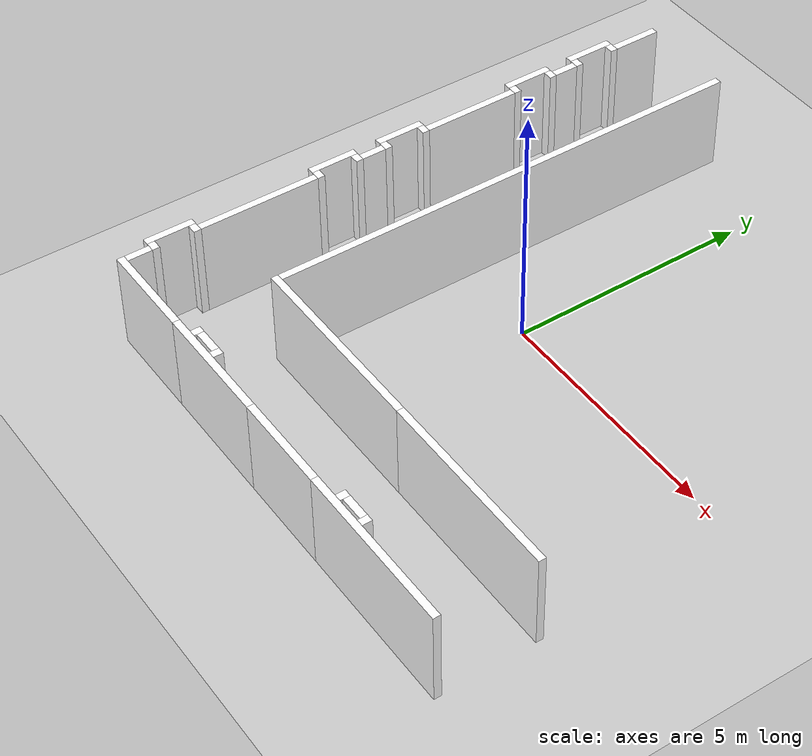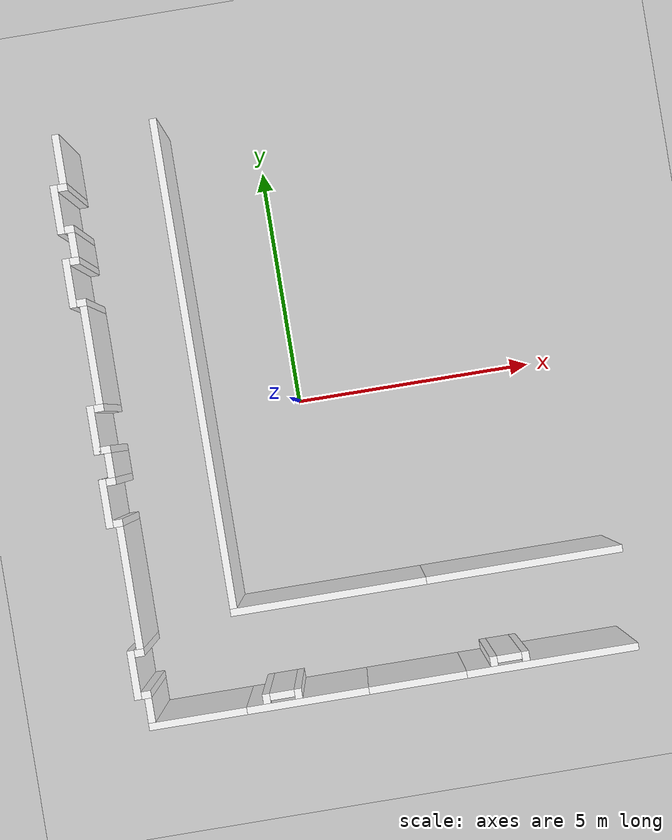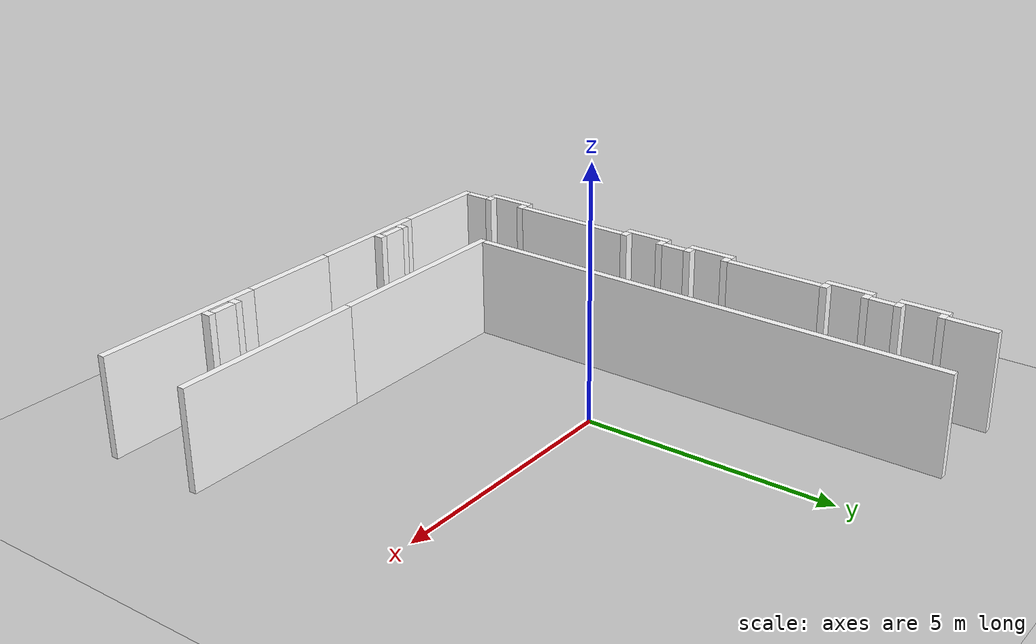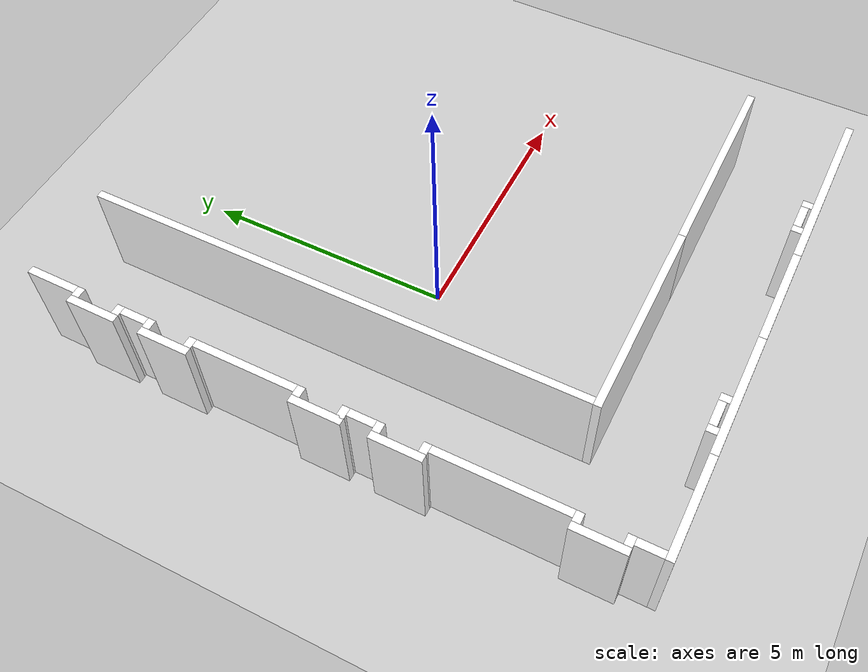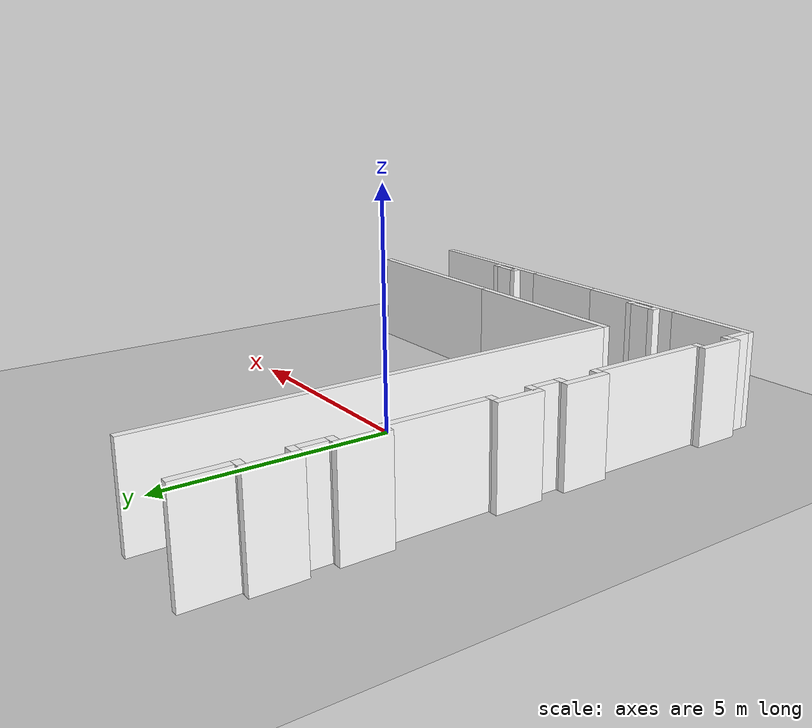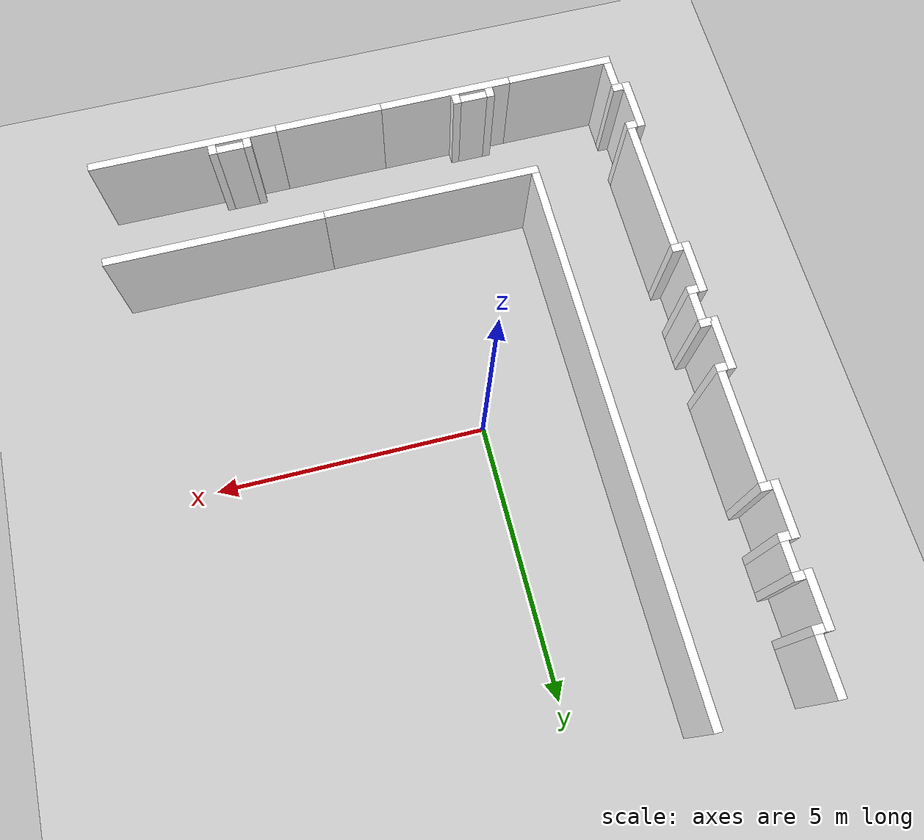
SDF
<sdf version="1.6">
 <world name="default">
  <light name="sun" type="directional">
   <pose>0 0 10 0 -0 0</pose>
   <diffuse>0.8 0.8 0.8 1</diffuse>
   <specular>0.2 0.2 0.2 1</specular>
   <attenuation>
    <range>1000</range>
    <constant>0.9</constant>
    <linear>0.01</linear>
    <quadratic>0.001</quadratic>
   </attenuation>
   <direction>-0.5 0.1 -0.9</direction>
  </light>
  <model name="ground_plane">
   <static>1</static>
   <link name="link">
    <collision name="collision">
     <geometry><plane><normal>0 0 1</normal><size>100 100</size></plane></geometry>
     <surface><friction><ode><mu>100</mu><mu2>50</mu2></ode></friction></surface>
    </collision>
    <visual name="visual">
     <cast_shadows>0</cast_shadows>
     <geometry><plane><normal>0 0 1</normal><size>12 12</size></plane></geometry>
     <material>
      <script>
       <uri>model://turtlebot_model_13/materials/scripts</uri>
       <uri>model://turtlebot_model_13/materials/textures</uri>
       <name>groundTexture/Image</name>
      </script>
     </material>
    </visual>
   </link>
  </model>
  <gravity>0 0 -9.8</gravity>
  <magnetic_field>6e-06 2.3e-05 -4.2e-05</magnetic_field>
  <atmosphere type="adiabatic"/>
  <physics name="default_physics" default="0" type="ode">
   <max_step_size>0.001</max_step_size>
   <real_time_factor>1</real_time_factor>
   <real_time_update_rate>1000</real_time_update_rate>
  </physics>
  <scene><ambient>0.4 0.4 0.4 1</ambient><background>0.7 0.7 0.7 1</background><shadows>1</shadows></scene>
  <spherical_coordinates>
   <surface_model>EARTH_WGS84</surface_model>
   <latitude_deg>0</latitude_deg>
   <longitude_deg>0</longitude_deg>
   <elevation>0</elevation>
   <heading_deg>0</heading_deg>
  </spherical_coordinates>
  <model name="turtlebot_model_13">
   <pose>0.890284 -0.005842 0 0 -0 0</pose>
   <link name="Wall_0">
    <collision name="Wall_0_Collision">
     <geometry><box><size>4 0.15 2</size></box></geometry>
     <pose>0 0 1 0 -0 0</pose>
    </collision>
    <visual name="Wall_0_Visual">
     <pose>0 0 1 0 -0 0</pose>
     <geometry><box><size>4 0.15 2</size></box></geometry>
     <material>
      <script>
       <uri>model://turtlebot_model_13/materials/scripts</uri>
       <uri>model://turtlebot_model_13/materials/textures</uri>
       <name>wallTexture/Image</name>
      </script>
      <ambient>1 1 1 1</ambient>
     </material>
     <meta><layer>0</layer></meta>
    </visual>
    <pose>3.095 -4 0 0 -0 0</pose>
   </link>
   <link name="Wall_15">
    <collision name="Wall_15_Collision">
     <geometry><box><size>2 0.15 2</size></box></geometry>
     <pose>0 0 1 0 -0 0</pose>
    </collision>
    <visual name="Wall_15_Visual">
     <pose>0 0 1 0 -0 0</pose>
     <geometry><box><size>2 0.15 2</size></box></geometry>
     <material>
      <script>
       <uri>model://turtlebot_model_13/materials/scripts</uri>
       <uri>model://turtlebot_model_13/materials/textures</uri>
       <name>doorTexture2/Image</name>
      </script>
      <ambient>1 1 1 1</ambient>
     </material>
     <meta><layer>0</layer></meta>
    </visual>
    <pose>-3.895 -6 0 0 -0 0</pose>
   </link>
   <link name="Wall_17">
    <collision name="Wall_17_Collision">
     <geometry><box><size>2.49 0.15 2</size></box></geometry>
     <pose>0 0 1 0 -0 0</pose>
    </collision>
    <visual name="Wall_17_Visual">
     <pose>0 0 1 0 -0 0</pose>
     <geometry><box><size>2.49 0.15 2</size></box></geometry>
     <material>
      <script>
       <uri>model://turtlebot_model_13/materials/scripts</uri>
       <uri>model://turtlebot_model_13/materials/textures</uri>
       <name>whiteTexture/Image</name>
      </script>
      <ambient>1 1 1 1</ambient>
     </material>
     <meta><layer>0</layer></meta>
    </visual>
    <pose>-1.65 -6 0 0 -0 0</pose>
   </link>
   <link name="Wall_2">
    <collision name="Wall_2_Collision">
     <geometry><box><size>4 0.15 2</size></box></geometry>
     <pose>0 0 1 0 -0 0</pose>
    </collision>
    <visual name="Wall_2_Visual">
     <pose>0 0 1 0 -0 0</pose>
     <geometry><box><size>4 0.15 2</size></box></geometry>
     <material>
      <script>
       <uri>model://turtlebot_model_13/materials/scripts</uri>
       <uri>model://turtlebot_model_13/materials/textures</uri>
       <name>wallTexture/Image</name>
      </script>
      <ambient>1 1 1 1</ambient>
     </material>
     <meta><layer>0</layer></meta>
    </visual>
    <pose>-0.905 -4 0 0 -0 3.14159</pose>
   </link>
   <link name="Wall_20">
    <collision name="Wall_20_Collision">
     <geometry><box><size>0.5 0.15 2</size></box></geometry>
     <pose>0 0 1 0 -0 0</pose>
    </collision>
    <visual name="Wall_20_Visual">
     <pose>0 0 1 0 -0 0</pose>
     <geometry><box><size>0.5 0.15 2</size></box></geometry>
     <material>
      <script>
       <uri>model://turtlebot_model_13/materials/scripts</uri>
       <uri>model://turtlebot_model_13/materials/textures</uri>
       <name>whiteTexture/Image</name>
      </script>
      <ambient>1 1 1 1</ambient>
     </material>
     <meta><layer>0</layer></meta>
    </visual>
    <pose>-4.82 -5.675 0 0 -0 1.5708</pose>
   </link>
   <link name="Wall_24">
    <collision name="Wall_24_Collision">
     <geometry><box><size>2.496 0.15 2</size></box></geometry>
     <pose>0 0 1 0 -0 0</pose>
    </collision>
    <visual name="Wall_24_Visual">
     <pose>0 0 1 0 -0 0</pose>
     <geometry><box><size>2.496 0.15 2</size></box></geometry>
     <material>
      <script>
       <uri>model://turtlebot_model_13/materials/scripts</uri>
       <uri>model://turtlebot_model_13/materials/textures</uri>
       <name>whiteTexture/Image</name>
      </script>
      <ambient>1 1 1 1</ambient>
     </material>
     <meta><layer>0</layer></meta>
    </visual>
    <pose>-4.82 -3.173 0 0 -0 1.5708</pose>
   </link>
   <link name="Wall_26">
    <collision name="Wall_26_Collision">
     <geometry><box><size>1 0.15 2</size></box></geometry>
     <pose>0 0 1 0 -0 0</pose>
    </collision>
    <visual name="Wall_26_Visual">
     <pose>0 0 1 0 -0 0</pose>
     <geometry><box><size>1 0.15 2</size></box></geometry>
     <material>
      <script>
       <uri>model://turtlebot_model_13/materials/scripts</uri>
       <uri>model://turtlebot_model_13/materials/textures</uri>
       <name>doorTexture/Image</name>
      </script>
      <ambient>1 1 1 1</ambient>
     </material>
     <meta><layer>0</layer></meta>
    </visual>
    <pose>-5.02 -1.425 0 0 -0 1.5708</pose>
   </link>
   <link name="Wall_28">
    <collision name="Wall_28_Collision">
     <geometry><box><size>0.5 0.15 2</size></box></geometry>
     <pose>0 0 1 0 -0 0</pose>
    </collision>
    <visual name="Wall_28_Visual">
     <pose>0 0 1 0 -0 0</pose>
     <geometry><box><size>0.5 0.15 2</size></box></geometry>
     <material>
      <script>
       <uri>model://turtlebot_model_13/materials/scripts</uri>
       <uri>model://turtlebot_model_13/materials/textures</uri>
       <name>whiteTexture/Image</name>
      </script>
      <ambient>1 1 1 1</ambient>
     </material>
     <meta><layer>0</layer></meta>
    </visual>
    <pose>-4.82 -0.675001 0 0 -0 1.5708</pose>
   </link>
   <link name="Wall_30">
    <collision name="Wall_30_Collision">
     <geometry><box><size>1 0.15 2</size></box></geometry>
     <pose>0 0 1 0 -0 0</pose>
    </collision>
    <visual name="Wall_30_Visual">
     <pose>0 0 1 0 -0 0</pose>
     <geometry><box><size>1 0.15 2</size></box></geometry>
     <material>
      <script>
       <uri>model://turtlebot_model_13/materials/scripts</uri>
       <uri>model://turtlebot_model_13/materials/textures</uri>
       <name>doorTexture/Image</name>
      </script>
      <ambient>1 1 1 1</ambient>
     </material>
     <meta><layer>0</layer></meta>
    </visual>
    <pose>-5.02 0.074999 0 0 -0 1.5708</pose>
   </link>
   <link name="Wall_32">
    <collision name="Wall_32_Collision">
     <geometry><box><size>2 0.15 2</size></box></geometry>
     <pose>0 0 1 0 -0 0</pose>
    </collision>
    <visual name="Wall_32_Visual">
     <pose>0 0 1 0 -0 0</pose>
     <geometry><box><size>2 0.15 2</size></box></geometry>
     <material>
      <script>
       <uri>model://turtlebot_model_13/materials/scripts</uri>
       <uri>model://turtlebot_model_13/materials/textures</uri>
       <name>whiteTexture/Image</name>
      </script>
      <ambient>1 1 1 1</ambient>
     </material>
     <meta><layer>0</layer></meta>
    </visual>
    <pose>-4.82 1.575 0 0 -0 1.5708</pose>
   </link>
   <link name="Wall_37">
    <collision name="Wall_37_Collision">
     <geometry><box><size>1 0.15 2</size></box></geometry>
     <pose>0 0 1 0 -0 0</pose>
    </collision>
    <visual name="Wall_37_Visual">
     <pose>0 0 1 0 -0 0</pose>
     <geometry><box><size>1 0.15 2</size></box></geometry>
     <material>
      <script>
       <uri>model://turtlebot_model_13/materials/scripts</uri>
       <uri>model://turtlebot_model_13/materials/textures</uri>
       <name>doorTexture/Image</name>
      </script>
      <ambient>1 1 1 1</ambient>
     </material>
     <meta><layer>0</layer></meta>
    </visual>
    <pose>-5.02 3.075 0 0 -0 1.5708</pose>
   </link>
   <link name="Wall_4">
    <collision name="Wall_4_Collision">
     <geometry><box><size>10 0.15 2</size></box></geometry>
     <pose>0 0 1 0 -0 0</pose>
    </collision>
    <visual name="Wall_4_Visual">
     <pose>0 0 1 0 -0 0</pose>
     <geometry><box><size>10 0.15 2</size></box></geometry>
     <material>
      <script>
       <uri>model://turtlebot_model_13/materials/scripts</uri>
       <uri>model://turtlebot_model_13/materials/textures</uri>
       <name>whiteTexture/Image</name>
      </script>
      <ambient>1 1 1 1</ambient>
     </material>
     <meta><layer>0</layer></meta>
    </visual>
    <pose>-2.83 1.075 0 0 -0 1.5708</pose>
   </link>
   <link name="Wall_40">
    <collision name="Wall_40_Collision">
     <geometry><box><size>0.5 0.15 2</size></box></geometry>
     <pose>0 0 1 0 -0 0</pose>
    </collision>
    <visual name="Wall_40_Visual">
     <pose>0 0 1 0 -0 0</pose>
     <geometry><box><size>0.5 0.15 2</size></box></geometry>
     <material>
      <script>
       <uri>model://turtlebot_model_13/materials/scripts</uri>
       <uri>model://turtlebot_model_13/materials/textures</uri>
       <name>whiteTexture/Image</name>
      </script>
      <ambient>1 1 1 1</ambient>
     </material>
     <meta><layer>0</layer></meta>
    </visual>
    <pose>-4.82 3.825 0 0 -0 1.5708</pose>
   </link>
   <link name="Wall_42">
    <collision name="Wall_42_Collision">
     <geometry><box><size>1 0.15 2</size></box></geometry>
     <pose>0 0 1 0 -0 0</pose>
    </collision>
    <visual name="Wall_42_Visual">
     <pose>0 0 1 0 -0 0</pose>
     <geometry><box><size>1 0.15 2</size></box></geometry>
     <material>
      <script>
       <uri>model://turtlebot_model_13/materials/scripts</uri>
       <uri>model://turtlebot_model_13/materials/textures</uri>
       <name>doorTexture/Image</name>
      </script>
      <ambient>1 1 1 1</ambient>
     </material>
     <meta><layer>0</layer></meta>
    </visual>
    <pose>-5.02 4.575 0 0 -0 1.5708</pose>
   </link>
   <link name="Wall_44">
    <collision name="Wall_44_Collision">
     <geometry><box><size>1 0.15 2</size></box></geometry>
     <pose>0 0 1 0 -0 0</pose>
    </collision>
    <visual name="Wall_44_Visual">
     <pose>0 0 1 0 -0 0</pose>
     <geometry><box><size>1 0.15 2</size></box></geometry>
     <material>
      <script>
       <uri>model://turtlebot_model_13/materials/scripts</uri>
       <uri>model://turtlebot_model_13/materials/textures</uri>
       <name>whiteTexture/Image</name>
      </script>
      <ambient>1 1 1 1</ambient>
     </material>
     <meta><layer>0</layer></meta>
    </visual>
    <pose>-4.82 5.575 0 0 -0 1.5708</pose>
   </link>
   <link name="Wall_46">
    <collision name="Wall_46_Collision">
     <geometry><box><size>0.2 0.15 2</size></box></geometry>
     <pose>0 0 1 0 -0 0</pose>
    </collision>
    <visual name="Wall_46_Visual">
     <pose>0 0 1 0 -0 0</pose>
     <geometry><box><size>0.2 0.15 2</size></box></geometry>
     <material>
      <script>
       <uri>model://turtlebot_model_13/materials/scripts</uri>
       <uri>model://turtlebot_model_13/materials/textures</uri>
       <name>whiteTexture/Image</name>
      </script>
      <ambient>1 1 1 1</ambient>
     </material>
     <meta><layer>0</layer></meta>
    </visual>
    <pose>2.17 -5.825 0 0 -0 1.5708</pose>
   </link>
   <link name="Wall_51">
    <collision name="Wall_51_Collision">
     <geometry><box><size>0.5 0.15 2</size></box></geometry>
     <pose>0 0 1 0 -0 0</pose>
    </collision>
    <visual name="Wall_51_Visual">
     <pose>0 0 1 0 -0 0</pose>
     <geometry><box><size>0.5 0.15 2</size></box></geometry>
     <material>
      <script>
       <uri>model://turtlebot_model_13/materials/scripts</uri>
       <uri>model://turtlebot_model_13/materials/textures</uri>
       <name>whiteTexture/Image</name>
      </script>
      <ambient>1 1 1 1</ambient>
     </material>
     <meta><layer>0</layer></meta>
    </visual>
    <pose>2.495 -5.8 0 0 -0 0</pose>
   </link>
   <link name="Wall_56">
    <collision name="Wall_56_Collision">
     <geometry><box><size>0.2 0.15 2</size></box></geometry>
     <pose>0 0 1 0 -0 0</pose>
    </collision>
    <visual name="Wall_56_Visual">
     <pose>0 0 1 0 -0 0</pose>
     <geometry><box><size>0.2 0.15 2</size></box></geometry>
     <material>
      <script>
       <uri>model://turtlebot_model_13/materials/scripts</uri>
       <uri>model://turtlebot_model_13/materials/textures</uri>
       <name>whiteTexture/Image</name>
      </script>
      <ambient>1 1 1 1</ambient>
     </material>
     <meta><layer>0</layer></meta>
    </visual>
    <pose>2.82 -5.825 0 0 -0 1.5708</pose>
   </link>
   <link name="Wall_58">
    <collision name="Wall_58_Collision">
     <geometry><box><size>0.2 0.15 2</size></box></geometry>
     <pose>0 0 1 0 -0 0</pose>
    </collision>
    <visual name="Wall_58_Visual">
     <pose>0 0 1 0 -0 0</pose>
     <geometry><box><size>0.2 0.15 2</size></box></geometry>
     <material>
      <script>
       <uri>model://turtlebot_model_13/materials/scripts</uri>
       <uri>model://turtlebot_model_13/materials/textures</uri>
       <name>whiteTexture/Image</name>
      </script>
      <ambient>1 1 1 1</ambient>
     </material>
     <meta><layer>0</layer></meta>
    </visual>
    <pose>-2.47 -5.825 0 0 -0 1.5708</pose>
   </link>
   <link name="Wall_6">
    <collision name="Wall_6_Collision">
     <geometry><box><size>3.5 0.15 2</size></box></geometry>
     <pose>0 0 1 0 -0 0</pose>
    </collision>
    <visual name="Wall_6_Visual">
     <pose>0 0 1 0 -0 0</pose>
     <geometry><box><size>3.5 0.15 2</size></box></geometry>
     <material>
      <script>
       <uri>model://turtlebot_model_13/materials/scripts</uri>
       <uri>model://turtlebot_model_13/materials/textures</uri>
       <name>whiteTexture/Image</name>
      </script>
      <ambient>1 1 1 1</ambient>
     </material>
     <meta><layer>0</layer></meta>
    </visual>
    <pose>3.345 -6 0 0 -0 3.14159</pose>
   </link>
   <link name="Wall_61">
    <collision name="Wall_61_Collision">
     <geometry><box><size>0.5 0.15 2</size></box></geometry>
     <pose>0 0 1 0 -0 0</pose>
    </collision>
    <visual name="Wall_61_Visual">
     <pose>0 0 1 0 -0 0</pose>
     <geometry><box><size>0.5 0.15 2</size></box></geometry>
     <material>
      <script>
       <uri>model://turtlebot_model_13/materials/scripts</uri>
       <uri>model://turtlebot_model_13/materials/textures</uri>
       <name>whiteTexture/Image</name>
      </script>
      <ambient>1 1 1 1</ambient>
     </material>
     <meta><layer>0</layer></meta>
    </visual>
    <pose>-2.145 -5.8 0 0 -0 0</pose>
   </link>
   <link name="Wall_63">
    <collision name="Wall_63_Collision">
     <geometry><box><size>0.2 0.15 2</size></box></geometry>
     <pose>0 0 1 0 -0 0</pose>
    </collision>
    <visual name="Wall_63_Visual">
     <pose>0 0 1 0 -0 0</pose>
     <geometry><box><size>0.2 0.15 2</size></box></geometry>
     <material>
      <script>
       <uri>model://turtlebot_model_13/materials/scripts</uri>
       <uri>model://turtlebot_model_13/materials/textures</uri>
       <name>whiteTexture/Image</name>
      </script>
      <ambient>1 1 1 1</ambient>
     </material>
     <meta><layer>0</layer></meta>
    </visual>
    <pose>-1.82 -5.825 0 0 -0 1.5708</pose>
   </link>
   <link name="Wall_68">
    <collision name="Wall_68_Collision">
     <geometry><box><size>0.2 0.15 2</size></box></geometry>
     <pose>0 0 1 0 -0 0</pose>
    </collision>
    <visual name="Wall_68_Visual">
     <pose>0 0 1 0 -0 0</pose>
     <geometry><box><size>0.2 0.15 2</size></box></geometry>
     <material>
      <script>
       <uri>model://turtlebot_model_13/materials/scripts</uri>
       <uri>model://turtlebot_model_13/materials/textures</uri>
       <name>borderTexture/Image</name>
      </script>
      <ambient>1 1 1 1</ambient>
     </material>
     <meta><layer>0</layer></meta>
    </visual>
    <pose>-4.845 -4.496 0 0 -0 3.14159</pose>
   </link>
   <link name="Wall_72">
    <collision name="Wall_72_Collision">
     <geometry><box><size>0.2 0.15 2</size></box></geometry>
     <pose>0 0 1 0 -0 0</pose>
    </collision>
    <visual name="Wall_72_Visual">
     <pose>0 0 1 0 -0 0</pose>
     <geometry><box><size>0.2 0.15 2</size></box></geometry>
     <material>
      <script>
       <uri>model://turtlebot_model_13/materials/scripts</uri>
       <uri>model://turtlebot_model_13/materials/textures</uri>
       <name>borderTexture/Image</name>
      </script>
      <ambient>1 1 1 1</ambient>
     </material>
     <meta><layer>0</layer></meta>
    </visual>
    <pose>-4.845 -5.35 0 0 -0 3.14159</pose>
   </link>
   <link name="Wall_74">
    <collision name="Wall_74_Collision">
     <geometry><box><size>1.004 0.15 2</size></box></geometry>
     <pose>0 0 1 0 -0 0</pose>
    </collision>
    <visual name="Wall_74_Visual">
     <pose>0 0 1 0 -0 0</pose>
     <geometry><box><size>1.004 0.15 2</size></box></geometry>
     <material>
      <script>
       <uri>model://turtlebot_model_13/materials/scripts</uri>
       <uri>model://turtlebot_model_13/materials/textures</uri>
       <name>doorTexture/Image</name>
      </script>
      <ambient>1 1 1 1</ambient>
     </material>
     <meta><layer>0</layer></meta>
    </visual>
    <pose>-5.02 -4.923 0 0 0 -1.5708</pose>
   </link>
   <link name="Wall_76">
    <collision name="Wall_76_Collision">
     <geometry><box><size>0.2 0.15 2</size></box></geometry>
     <pose>0 0 1 0 -0 0</pose>
    </collision>
    <visual name="Wall_76_Visual">
     <pose>0 0 1 0 -0 0</pose>
     <geometry><box><size>0.2 0.15 2</size></box></geometry>
     <material>
      <script>
       <uri>model://turtlebot_model_13/materials/scripts</uri>
       <uri>model://turtlebot_model_13/materials/textures</uri>
       <name>borderTexture/Image</name>
      </script>
      <ambient>1 1 1 1</ambient>
     </material>
     <meta><layer>0</layer></meta>
    </visual>
    <pose>-4.845 -1 0 0 -0 3.14159</pose>
   </link>
   <link name="Wall_8">
    <collision name="Wall_8_Collision">
     <geometry><box><size>2 0.15 2</size></box></geometry>
     <pose>0 0 1 0 -0 0</pose>
    </collision>
    <visual name="Wall_8_Visual">
     <pose>0 0 1 0 -0 0</pose>
     <geometry><box><size>2 0.15 2</size></box></geometry>
     <material>
      <script>
       <uri>model://turtlebot_model_13/materials/scripts</uri>
       <uri>model://turtlebot_model_13/materials/textures</uri>
       <name>doorTexture2/Image</name>
      </script>
      <ambient>1 1 1 1</ambient>
     </material>
     <meta><layer>0</layer></meta>
    </visual>
    <pose>0.595 -6 0 0 -0 3.14159</pose>
   </link>
   <link name="Wall_81">
    <collision name="Wall_81_Collision">
     <geometry><box><size>0.2 0.15 2</size></box></geometry>
     <pose>0 0 1 0 -0 0</pose>
    </collision>
    <visual name="Wall_81_Visual">
     <pose>0 0 1 0 -0 0</pose>
     <geometry><box><size>0.2 0.15 2</size></box></geometry>
     <material>
      <script>
       <uri>model://turtlebot_model_13/materials/scripts</uri>
       <uri>model://turtlebot_model_13/materials/textures</uri>
       <name>borderTexture/Image</name>
      </script>
      <ambient>1 1 1 1</ambient>
     </material>
     <meta><layer>0</layer></meta>
    </visual>
    <pose>-4.845 -1.85 0 0 -0 3.14159</pose>
   </link>
   <link name="Wall_84">
    <collision name="Wall_84_Collision">
     <geometry><box><size>0.2 0.15 2</size></box></geometry>
     <pose>0 0 1 0 -0 0</pose>
    </collision>
    <visual name="Wall_84_Visual">
     <pose>0 0 1 0 -0 0</pose>
     <geometry><box><size>0.2 0.15 2</size></box></geometry>
     <material>
      <script>
       <uri>model://turtlebot_model_13/materials/scripts</uri>
       <uri>model://turtlebot_model_13/materials/textures</uri>
       <name>borderTexture/Image</name>
      </script>
      <ambient>1 1 1 1</ambient>
     </material>
     <meta><layer>0</layer></meta>
    </visual>
    <pose>-4.845 0.5 0 0 -0 3.14159</pose>
   </link>
   <link name="Wall_86">
    <collision name="Wall_86_Collision">
     <geometry><box><size>0.23 0.15 2</size></box></geometry>
     <pose>0 0 1 0 -0 0</pose>
    </collision>
    <visual name="Wall_86_Visual">
     <pose>0 0 1 0 -0 0</pose>
     <geometry><box><size>0.23 0.15 2</size></box></geometry>
     <material>
      <script>
       <uri>model://turtlebot_model_13/materials/scripts</uri>
       <uri>model://turtlebot_model_13/materials/textures</uri>
       <name>borderTexture/Image</name>
      </script>
      <ambient>1 1 1 1</ambient>
     </material>
     <meta><layer>0</layer></meta>
    </visual>
    <pose>-4.86 -0.35 0 0 -0 3.14159</pose>
   </link>
   <link name="Wall_91">
    <collision name="Wall_91_Collision">
     <geometry><box><size>0.2 0.15 2</size></box></geometry>
     <pose>0 0 1 0 -0 0</pose>
    </collision>
    <visual name="Wall_91_Visual">
     <pose>0 0 1 0 -0 0</pose>
     <geometry><box><size>0.2 0.15 2</size></box></geometry>
     <material>
      <script>
       <uri>model://turtlebot_model_13/materials/scripts</uri>
       <uri>model://turtlebot_model_13/materials/textures</uri>
       <name>borderTexture/Image</name>
      </script>
      <ambient>1 1 1 1</ambient>
     </material>
     <meta><layer>0</layer></meta>
    </visual>
    <pose>-4.845 3.5 0 0 -0 3.14159</pose>
   </link>
   <link name="Wall_93">
    <collision name="Wall_93_Collision">
     <geometry><box><size>0.2 0.15 2</size></box></geometry>
     <pose>0 0 1 0 -0 0</pose>
    </collision>
    <visual name="Wall_93_Visual">
     <pose>0 0 1 0 -0 0</pose>
     <geometry><box><size>0.2 0.15 2</size></box></geometry>
     <material>
      <script>
       <uri>model://turtlebot_model_13/materials/scripts</uri>
       <uri>model://turtlebot_model_13/materials/textures</uri>
       <name>borderTexture/Image</name>
      </script>
      <ambient>1 1 1 1</ambient>
     </material>
     <meta><layer>0</layer></meta>
    </visual>
    <pose>-4.845 2.65 0 0 -0 3.14159</pose>
   </link>
   <link name="Wall_95">
    <collision name="Wall_95_Collision">
     <geometry><box><size>0.2 0.15 2</size></box></geometry>
     <pose>0 0 1 0 -0 0</pose>
    </collision>
    <visual name="Wall_95_Visual">
     <pose>0 0 1 0 -0 0</pose>
     <geometry><box><size>0.2 0.15 2</size></box></geometry>
     <material>
      <script>
       <uri>model://turtlebot_model_13/materials/scripts</uri>
       <uri>model://turtlebot_model_13/materials/textures</uri>
       <name>borderTexture/Image</name>
      </script>
      <ambient>1 1 1 1</ambient>
     </material>
     <meta><layer>0</layer></meta>
    </visual>
    <pose>-4.845 4.15 0 0 -0 3.14159</pose>
   </link>
   <link name="Wall_97">
    <collision name="Wall_97_Collision">
     <geometry><box><size>0.2 0.15 2</size></box></geometry>
     <pose>0 0 1 0 -0 0</pose>
    </collision>
    <visual name="Wall_97_Visual">
     <pose>0 0 1 0 -0 0</pose>
     <geometry><box><size>0.2 0.15 2</size></box></geometry>
     <material>
      <script>
       <uri>model://turtlebot_model_13/materials/scripts</uri>
       <uri>model://turtlebot_model_13/materials/textures</uri>
       <name>borderTexture/Image</name>
      </script>
      <ambient>1 1 1 1</ambient>
     </material>
     <meta><layer>0</layer></meta>
    </visual>
    <pose>-4.845 5 0 0 -0 3.14159</pose>
   </link>
   <static>1</static>
  </model>
 </world>
</sdf>
